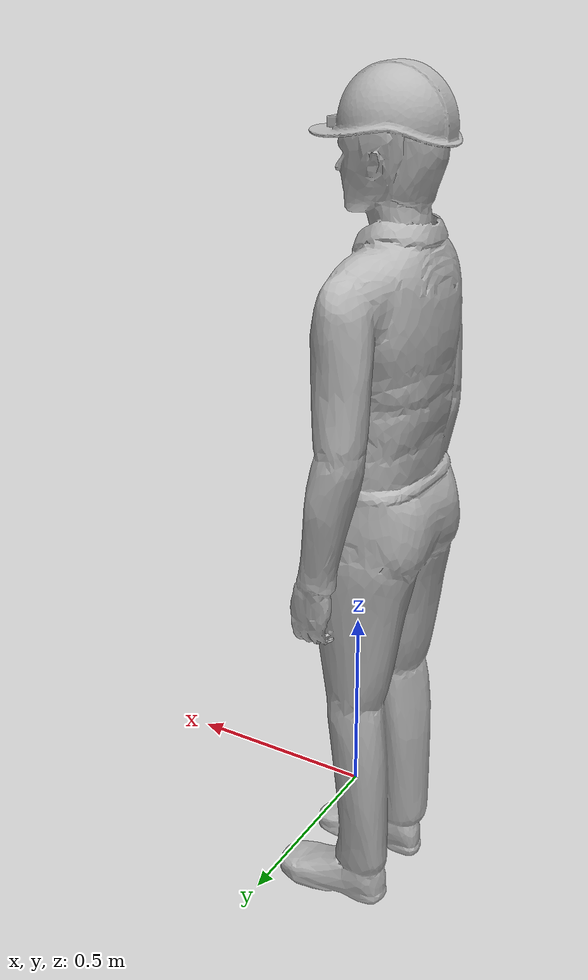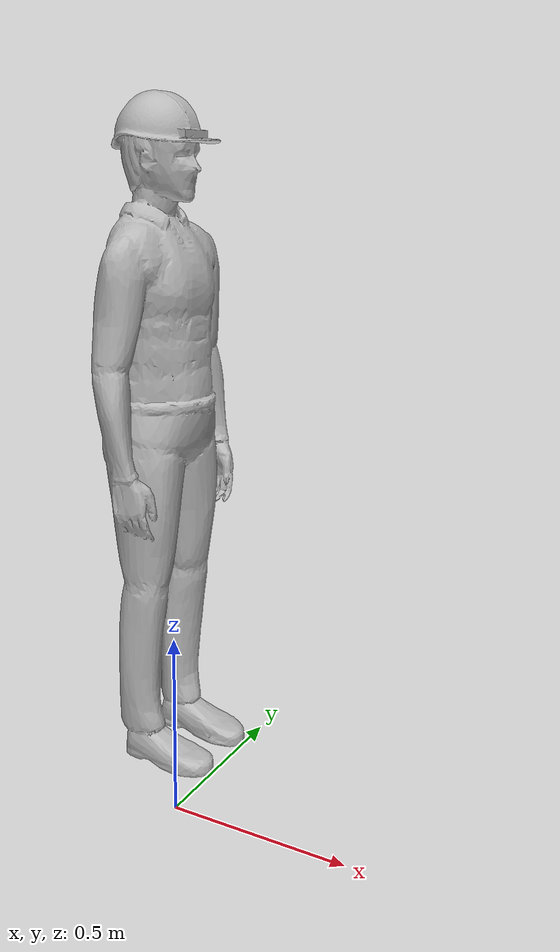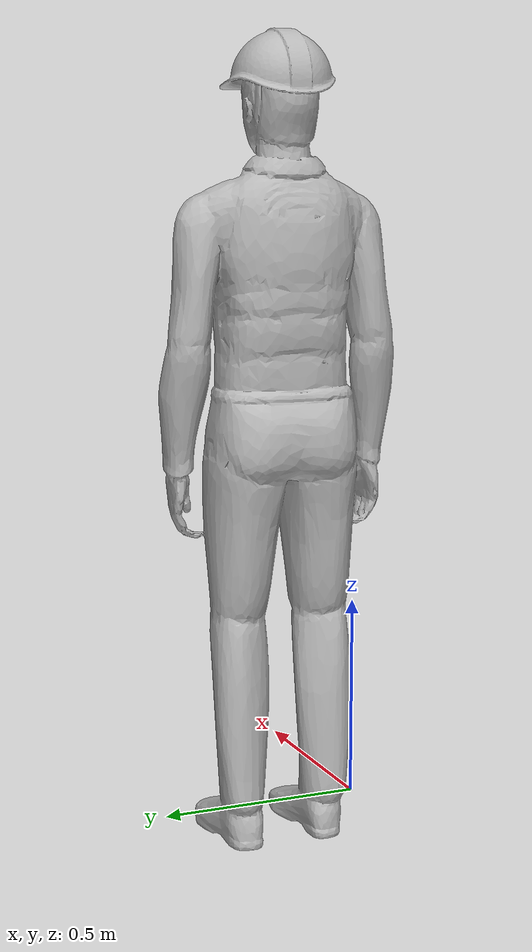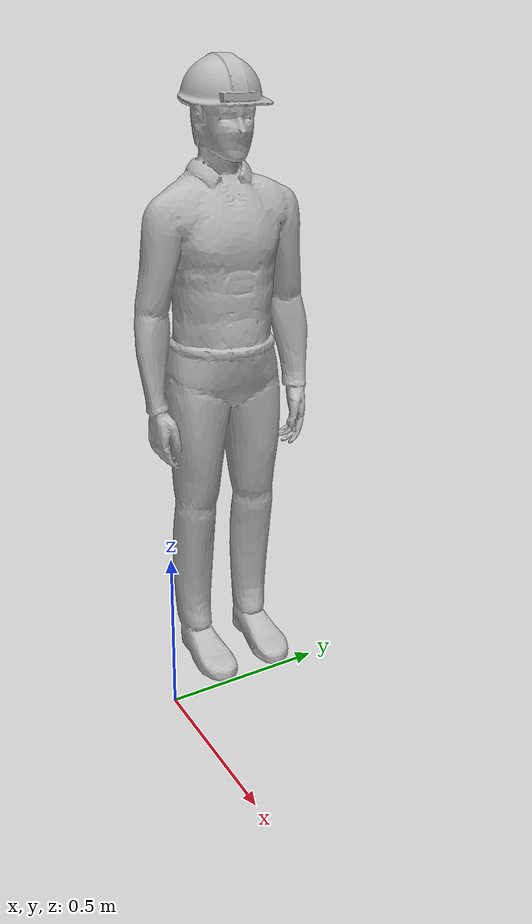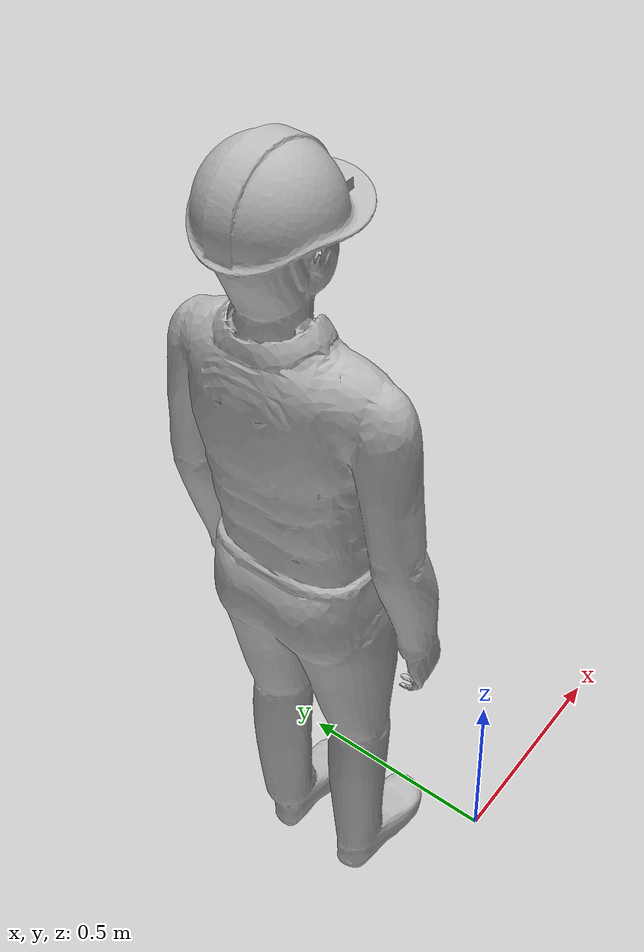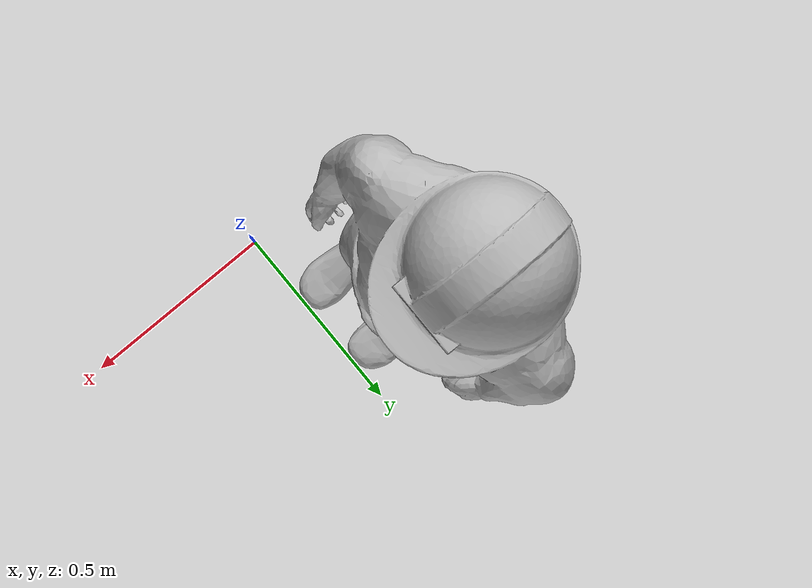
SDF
<?xml version="1.0" ?>
<sdf version="1.6">
  <model name="Human2">
    <static>true</static>
    <link name="link">

      <collision name="collision">
        <pose>0 0 0.95 0 0 0</pose>
        <geometry>
          <box>
            <size>0.35 0.574 1.9</size>
          </box>
        </geometry>
      </collision>

      <visual name="visual">
        <pose degrees="true">0 0 0 0 0 180</pose>
        <geometry>
          <mesh>
            <scale>1 1 1</scale>
            <uri>meshes/human2.dae</uri>
          </mesh>
        </geometry>
      </visual>

    </link>
  </model>
</sdf>
